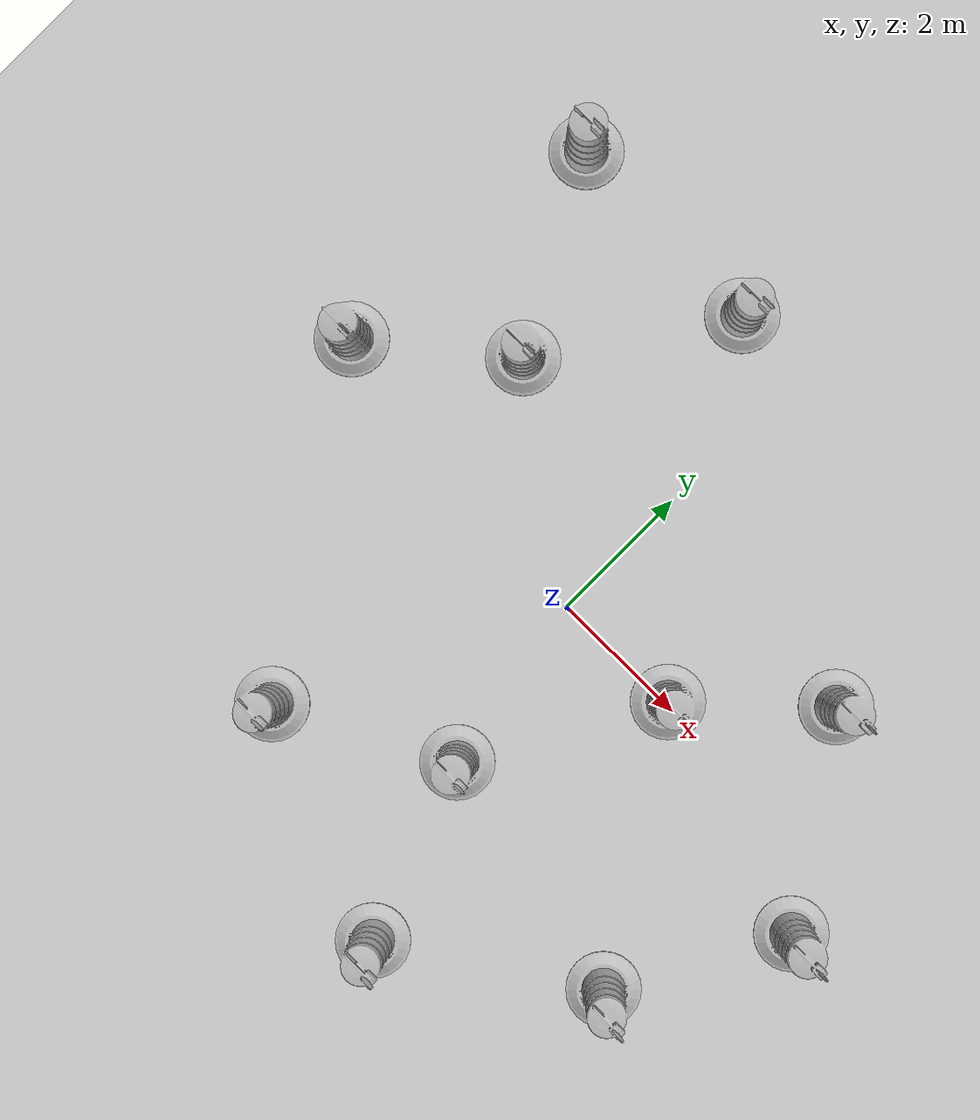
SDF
<sdf version="1.7">
 <world name="default">
  <light name="sun" type="directional">
   <pose>0 0 10 0 -0 0</pose>
   <diffuse>0.8 0.8 0.8 1</diffuse>
   <specular>0.2 0.2 0.2 1</specular>
   <attenuation>
    <range>1000</range>
    <constant>0.9</constant>
    <linear>0.01</linear>
    <quadratic>0.001</quadratic>
   </attenuation>
   <direction>-0.5 0.1 -0.9</direction>
   <spot><inner_angle>0</inner_angle><outer_angle>0</outer_angle><falloff>0</falloff></spot>
  </light>
  <model name="ground_plane">
   <static>1</static>
   <link name="link">
    <collision name="collision">
     <geometry><plane><normal>0 0 1</normal><size>100 100</size></plane></geometry>
     <surface>
      <contact><collide_bitmask>65535</collide_bitmask></contact>
      <friction><ode><mu>100</mu><mu2>50</mu2></ode></friction>
     </surface>
    </collision>
    <visual name="visual">
     <cast_shadows>0</cast_shadows>
     <geometry><plane><normal>0 0 1</normal><size>100 100</size></plane></geometry>
     <material>
      <script><uri>file://media/materials/scripts/gazebo.material</uri><name>Gazebo/Grey</name></script>
     </material>
    </visual>
   </link>
  </model>
  <gravity>0 0 -9.8</gravity>
  <magnetic_field>6e-06 2.3e-05 -4.2e-05</magnetic_field>
  <atmosphere type="adiabatic"/>
  <physics type="ode">
   <max_step_size>0.001</max_step_size>
   <real_time_factor>1</real_time_factor>
   <real_time_update_rate>1000</real_time_update_rate>
  </physics>
  <scene><ambient>0.4 0.4 0.4 1</ambient><background>0.7 0.7 0.7 1</background><shadows>1</shadows></scene>
  <audio><device>default</device></audio>
  <spherical_coordinates>
   <surface_model>EARTH_WGS84</surface_model>
   <latitude_deg>0</latitude_deg>
   <longitude_deg>0</longitude_deg>
   <elevation>0</elevation>
   <heading_deg>0</heading_deg>
  </spherical_coordinates>
  <model name="Construction Barrel">
   <link name="link">
    <inertial>
     <pose>0 0 0.4 0 -0 0</pose>
     <mass>500</mass>
     <inertia><ixx>51.2096</ixx><iyy>51.2096</iyy><izz>25</izz><ixy>0</ixy><ixz>0</ixz><iyz>0</iyz></inertia>
    </inertial>
    <collision name="collision">
     <geometry><mesh><uri>model://construction_barrel/meshes/construction_barrel.dae</uri></mesh></geometry>
    </collision>
    <visual name="visual">
     <geometry><mesh><uri>model://construction_barrel/meshes/construction_barrel.dae</uri></mesh></geometry>
    </visual>
   </link>
   <pose>-4.57879 0.507581 -5e-06 -1.2e-05 -3e-06 -1.8e-05</pose>
  </model>
  <model name="Construction Barrel_clone">
   <link name="link">
    <inertial>
     <pose>0 0 0.4 0 -0 0</pose>
     <mass>500</mass>
     <inertia><ixx>51.2096</ixx><iyy>51.2096</iyy><izz>25</izz><ixy>0</ixy><ixz>0</ixz><iyz>0</iyz></inertia>
    </inertial>
    <collision name="collision">
     <geometry><mesh><uri>model://construction_barrel/meshes/construction_barrel.dae</uri></mesh></geometry>
    </collision>
    <visual name="visual">
     <geometry><mesh><uri>model://construction_barrel/meshes/construction_barrel.dae</uri></mesh></geometry>
    </visual>
   </link>
   <pose>-4.12056 4.50826 -2e-06 -5e-06 -4e-06 -1.6e-05</pose>
  </model>
  <model name="Construction Barrel_clone_0">
   <link name="link">
    <inertial>
     <pose>0 0 0.4 0 -0 0</pose>
     <mass>500</mass>
     <inertia><ixx>51.2096</ixx><iyy>51.2096</iyy><izz>25</izz><ixy>0</ixy><ixz>0</ixz><iyz>0</iyz></inertia>
    </inertial>
    <collision name="collision">
     <geometry><mesh><uri>model://construction_barrel/meshes/construction_barrel.dae</uri></mesh></geometry>
    </collision>
    <visual name="visual">
     <geometry><mesh><uri>model://construction_barrel/meshes/construction_barrel.dae</uri></mesh></geometry>
    </visual>
   </link>
   <pose>1.86179 0.052004 -3e-06 -7e-06 -1.2e-05 -1.3e-05</pose>
  </model>
  <model name="Construction Barrel_clone_1">
   <link name="link">
    <inertial>
     <pose>0 0 0.4 0 -0 0</pose>
     <mass>500</mass>
     <inertia><ixx>51.2096</ixx><iyy>51.2096</iyy><izz>25</izz><ixy>0</ixy><ixz>0</ixz><iyz>0</iyz></inertia>
    </inertial>
    <collision name="collision">
     <geometry><mesh><uri>model://construction_barrel/meshes/construction_barrel.dae</uri></mesh></geometry>
    </collision>
    <visual name="visual">
     <geometry><mesh><uri>model://construction_barrel/meshes/construction_barrel.dae</uri></mesh></geometry>
    </visual>
   </link>
   <pose>0.430913 -2.5154 -0 1e-06 -1e-06 -1e-05</pose>
  </model>
  <model name="Construction Barrel_clone_2">
   <link name="link">
    <inertial>
     <pose>0 0 0.4 0 -0 0</pose>
     <mass>500</mass>
     <inertia><ixx>51.2096</ixx><iyy>51.2096</iyy><izz>25</izz><ixy>0</ixy><ixz>0</ixz><iyz>0</iyz></inertia>
    </inertial>
    <collision name="collision">
     <geometry><mesh><uri>model://construction_barrel/meshes/construction_barrel.dae</uri></mesh></geometry>
    </collision>
    <visual name="visual">
     <geometry><mesh><uri>model://construction_barrel/meshes/construction_barrel.dae</uri></mesh></geometry>
    </visual>
   </link>
   <pose>-1.08872 4.42655 -2e-06 7e-06 -4e-06 -7e-06</pose>
  </model>
  <model name="Construction Barrel_clone_3">
   <link name="link">
    <inertial>
     <pose>0 0 0.4 0 -0 0</pose>
     <mass>500</mass>
     <inertia><ixx>51.2096</ixx><iyy>51.2096</iyy><izz>25</izz><ixy>0</ixy><ixz>0</ixz><iyz>0</iyz></inertia>
    </inertial>
    <collision name="collision">
     <geometry><mesh><uri>model://construction_barrel/meshes/construction_barrel.dae</uri></mesh></geometry>
    </collision>
    <visual name="visual">
     <geometry><mesh><uri>model://construction_barrel/meshes/construction_barrel.dae</uri></mesh></geometry>
    </visual>
   </link>
   <pose>3.50779 1.59686 -2e-06 2e-06 7e-06 -1.1e-05</pose>
  </model>
  <model name="Construction Barrel_clone_4">
   <link name="link">
    <inertial>
     <pose>0 0 0.4 0 -0 0</pose>
     <mass>500</mass>
     <inertia><ixx>51.2096</ixx><iyy>51.2096</iyy><izz>25</izz><ixy>0</ixy><ixz>0</ixz><iyz>0</iyz></inertia>
    </inertial>
    <collision name="collision">
     <geometry><mesh><uri>model://construction_barrel/meshes/construction_barrel.dae</uri></mesh></geometry>
    </collision>
    <visual name="visual">
     <geometry><mesh><uri>model://construction_barrel/meshes/construction_barrel.dae</uri></mesh></geometry>
    </visual>
   </link>
   <pose>-2.77142 1.95029 -2e-06 -8e-06 -2e-06 -1e-05</pose>
  </model>
  <model name="Construction Barrel_clone_5">
   <link name="link">
    <inertial>
     <pose>0 0 0.4 0 -0 0</pose>
     <mass>500</mass>
     <inertia><ixx>51.2096</ixx><iyy>51.2096</iyy><izz>25</izz><ixy>0</ixy><ixz>0</ixz><iyz>0</iyz></inertia>
    </inertial>
    <collision name="collision">
     <geometry><mesh><uri>model://construction_barrel/meshes/construction_barrel.dae</uri></mesh></geometry>
    </collision>
    <visual name="visual">
     <geometry><mesh><uri>model://construction_barrel/meshes/construction_barrel.dae</uri></mesh></geometry>
    </visual>
   </link>
   <pose>-1.88128 -3.7155 -1e-06 1e-06 -9e-06 -8e-06</pose>
  </model>
  <model name="Construction Barrel_clone_6">
   <link name="link">
    <inertial>
     <pose>0 0 0.4 0 -0 0</pose>
     <mass>500</mass>
     <inertia><ixx>51.2096</ixx><iyy>51.2096</iyy><izz>25</izz><ixy>0</ixy><ixz>0</ixz><iyz>0</iyz></inertia>
    </inertial>
    <collision name="collision">
     <geometry><mesh><uri>model://construction_barrel/meshes/construction_barrel.dae</uri></mesh></geometry>
    </collision>
    <visual name="visual">
     <geometry><mesh><uri>model://construction_barrel/meshes/construction_barrel.dae</uri></mesh></geometry>
    </visual>
   </link>
   <pose>3.97065 -3.289 -3e-06 -7e-06 -1.2e-05 -1e-05</pose>
  </model>
  <model name="Construction Barrel_clone_7">
   <link name="link">
    <inertial>
     <pose>0 0 0.4 0 -0 0</pose>
     <mass>500</mass>
     <inertia><ixx>51.2096</ixx><iyy>51.2096</iyy><izz>25</izz><ixy>0</ixy><ixz>0</ixz><iyz>0</iyz></inertia>
    </inertial>
    <collision name="collision">
     <geometry><mesh><uri>model://construction_barrel/meshes/construction_barrel.dae</uri></mesh></geometry>
    </collision>
    <visual name="visual">
     <geometry><mesh><uri>model://construction_barrel/meshes/construction_barrel.dae</uri></mesh></geometry>
    </visual>
   </link>
   <pose>1.31732 -5.00844 -5e-06 -1.2e-05 -3e-06 -8e-06</pose>
  </model>
  <model name="Construction Barrel_clone_8">
   <link name="link">
    <inertial>
     <pose>0 0 0.4 0 -0 0</pose>
     <mass>500</mass>
     <inertia><ixx>51.2096</ixx><iyy>51.2096</iyy><izz>25</izz><ixy>0</ixy><ixz>0</ixz><iyz>0</iyz></inertia>
    </inertial>
    <collision name="collision">
     <geometry><mesh><uri>model://construction_barrel/meshes/construction_barrel.dae</uri></mesh></geometry>
    </collision>
    <visual name="visual">
     <geometry><mesh><uri>model://construction_barrel/meshes/construction_barrel.dae</uri></mesh></geometry>
    </visual>
   </link>
   <pose>5.22874 -0.983084 -2e-06 7e-06 -2e-06 -5e-06</pose>
  </model>
 </world>
</sdf>
